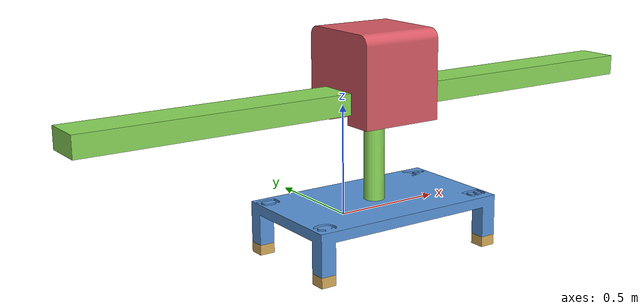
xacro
<?xml version="1.0" ?>
<robot name="loadcell" xmlns:xacro="http://www.ros.org/wiki/xacro">

<xacro:include filename="$(find MYROBOT_description)/urdf/materials.xacro" />
<xacro:include filename="$(find MYROBOT_description)/urdf/loadcell.gazebo" />

<!-- world -->

<!-- base_link -->
<link name="base_link">
  <inertial>
    <origin rpy="0 0 0" xyz="0.2900735515823136 0.16333321000352558 -0.055298402154703157"/>
    <mass value="260.48221372496585"/>
    <inertia ixx="9.159959" ixy="-0.018641" ixz="0.001111" iyy="25.350184" iyz="0.000252" izz="33.839156"/>
  </inertial>
  <visual>
    <origin rpy="0 0 0" xyz="0 0 0"/>
    <geometry>
      <mesh filename="package://MYROBOT_description/meshes/base_link.stl" scale="0.001 0.001 0.001"/>
    </geometry>
    <material name="aluminum_anodized_glossy_blue"/>
  </visual>
  <collision>
    <origin rpy="0 0 0" xyz="0 0 0"/>
    <geometry>
      <mesh filename="package://MYROBOT_description/meshes/base_link.stl" scale="0.001 0.001 0.001"/>
    </geometry>
  </collision>
</link>

<!-- load_1 -->
<link name="load_1">
  <inertial>
    <origin rpy="0 0 0" xyz="-1.499999737545457 0.0031503835829082283 0.08189067165140118"/>
    <mass value="502.7328878159581"/>
    <inertia ixx="16.234296" ixy="-0.0" ixz="0.0" iyy="13.605379" iyz="0.023195" izz="16.035127"/>
  </inertial>
  <visual>
    <origin rpy="0 0 0" xyz="-1.790214 -0.163365 -0.529989"/>
    <geometry>
      <mesh filename="package://MYROBOT_description/meshes/load_1.stl" scale="0.001 0.001 0.001"/>
    </geometry>
    <material name="aluminum_anodized_glossy_blue_1_1"/>
  </visual>
  <collision>
    <origin rpy="0 0 0" xyz="-1.790214 -0.163365 -0.529989"/>
    <geometry>
      <mesh filename="package://MYROBOT_description/meshes/load_1.stl" scale="0.001 0.001 0.001"/>
    </geometry>
  </collision>
</link>

<!-- arm_1 -->
<link name="arm_1">
  <inertial>
    <origin rpy="0 0 0" xyz="2.6245454298745585e-07 1.5287263047114585e-07 0.48470195374074454"/>
    <mass value="498.7441901220148"/>
    <inertia ixx="4.429461" ixy="-0.0" ixz="0.0" iyy="356.109461" iyz="0.0" izz="354.85468"/>
  </inertial>
  <visual>
    <origin rpy="0 0 0" xyz="-0.290214 -0.163365 0.020011"/>
    <geometry>
      <mesh filename="package://MYROBOT_description/meshes/arm_1.stl" scale="0.001 0.001 0.001"/>
    </geometry>
    <material name="aluminum_anodized_glossy_blue_1_1_1"/>
  </visual>
  <collision>
    <origin rpy="0 0 0" xyz="-0.290214 -0.163365 0.020011"/>
    <geometry>
      <mesh filename="package://MYROBOT_description/meshes/arm_1.stl" scale="0.001 0.001 0.001"/>
    </geometry>
  </collision>
</link>

<!-- Load_cell_A_1 -->
<link name="LoadCell_A_1">
  <inertial>
    <origin rpy="0 0 0" xyz="2.6245454298745585e-07 1.5287263033236798e-07 -0.025000319619697398"/>
    <mass value="2.2078124999999997"/>
    <inertia ixx="0.001495" ixy="0.0" ixz="0.0" iyy="0.001495" iyz="0.0" izz="0.00207"/>
  </inertial>
  <visual>
    <origin rpy="0 0 0" xyz="-0.752714 -0.425865 0.220011"/>
    <geometry>
      <mesh filename="package://MYROBOT_description/meshes/LoadCell_A_1.stl" scale="0.001 0.001 0.001"/>
    </geometry>
    <material name="aluminum_anodized_glossy_blue_1"/>
  </visual>
  <collision>
    <origin rpy="0 0 0" xyz="-0.752714 -0.425865 0.220011"/>
    <geometry>
      <mesh filename="package://MYROBOT_description/meshes/LoadCell_A_1.stl" scale="0.001 0.001 0.001"/>
    </geometry>
  </collision>
</link>

<!-- Load_cell_B_1 -->
<link name="LoadCell_B_1">
  <inertial>
    <origin rpy="0 0 0" xyz="2.6245454276541125e-07 1.528726305405348e-07 -0.025000319619697398"/>
    <mass value="2.2078124999999997"/>
    <inertia ixx="0.001495" ixy="0.0" ixz="0.0" iyy="0.001495" iyz="0.0" izz="0.00207"/>
  </inertial>
  <visual>
    <origin rpy="0 0 0" xyz="-0.752714 0.099135 0.220011"/>
    <geometry>
      <mesh filename="package://MYROBOT_description/meshes/LoadCell_B_1.stl" scale="0.001 0.001 0.001"/>
    </geometry>
    <material name="aluminum_anodized_glossy_blue_1"/>
  </visual>
  <collision>
    <origin rpy="0 0 0" xyz="-0.752714 0.099135 0.220011"/>
    <geometry>
      <mesh filename="package://MYROBOT_description/meshes/LoadCell_B_1.stl" scale="0.001 0.001 0.001"/>
    </geometry>
  </collision>
</link>

<!-- Load_cell_C_1 -->
<link name="LoadCell_C_1">
  <inertial>
    <origin rpy="0 0 0" xyz="2.624545432927672e-07 1.5287263047114585e-07 -0.025000319619697398"/>
    <mass value="2.2078124999999997"/>
    <inertia ixx="0.001495" ixy="0.0" ixz="-0.0" iyy="0.001495" iyz="0.0" izz="0.00207"/>
  </inertial>
  <visual>
    <origin rpy="0 0 0" xyz="0.172286 0.099135 0.220011"/>
    <geometry>
      <mesh filename="package://MYROBOT_description/meshes/LoadCell_C_1.stl" scale="0.001 0.001 0.001"/>
    </geometry>
    <material name="aluminum_anodized_glossy_blue_1"/>
  </visual>
  <collision>
    <origin rpy="0 0 0" xyz="0.172286 0.099135 0.220011"/>
    <geometry>
      <mesh filename="package://MYROBOT_description/meshes/LoadCell_C_1.stl" scale="0.001 0.001 0.001"/>
    </geometry>
  </collision>
</link>

<!-- Load_cell_D_1 -->
<link name="LoadCell_D_1">
  <inertial>
    <origin rpy="0 0 0" xyz="2.6245454334827834e-07 1.5287263033236798e-07 -0.025000319619697398"/>
    <mass value="2.2078124999999997"/>
    <inertia ixx="0.001495" ixy="0.0" ixz="-0.0" iyy="0.001495" iyz="0.0" izz="0.00207"/>
  </inertial>
  <visual>
    <origin rpy="0 0 0" xyz="0.172286 -0.425865 0.220011"/>
    <geometry>
      <mesh filename="package://MYROBOT_description/meshes/LoadCell_D_1.stl" scale="0.001 0.001 0.001"/>
    </geometry>
    <material name="aluminum_anodized_glossy_blue_1"/>
  </visual>
  <collision>
    <origin rpy="0 0 0" xyz="0.172286 -0.425865 0.220011"/>
    <geometry>
      <mesh filename="package://MYROBOT_description/meshes/LoadCell_D_1.stl" scale="0.001 0.001 0.001"/>
    </geometry>
  </collision>
</link>

<!-- joint > baselink to world -->

<!-- joint > arm_load_slide -->
<joint name="arm_load_slide" type="prismatic">
  <origin rpy="0 0 0" xyz="1.5 0.0 0.55"/>
  <parent link="arm_1"/>
  <child link="load_1"/>
  <axis xyz="1.0 0.0 -0.0"/>
  <limit effort="100" lower="-1.0" upper="1.0" velocity="100"/>
</joint>

<!-- joint > am_rotate -->
<joint name="am_rotate" type="continuous">
  <origin rpy="0 0 0" xyz="0.290214 0.163365 -0.020011"/>
  <parent link="base_link"/>
  <child link="arm_1"/>
  <axis xyz="0.0 0.0 1.0"/>
</joint>

<!-- joint > base_loadcellA -->

<joint name="base_loadcellA" type="fixed">
  <origin rpy="0 0 0" xyz="0.752714 0.425865 -0.220011"/>
  <parent link="base_link"/>
  <child link="LoadCell_A_1"/>
  <axis xyz="0.0 0.0 0.0"/>
  <limit effort="0" lower="0" upper="0" velocity="0"/>
</joint>

<!-- joint > base_loadcellB -->
<joint name="base_loadcellB" type="fixed">
  <origin rpy="0 0 0" xyz="0.752714 -0.099135 -0.220011"/>
  <parent link="base_link"/>
  <child link="LoadCell_B_1"/>
</joint>

<!-- joint > base_loadcellC -->
<joint name="base_loadcellC" type="fixed">
  <origin rpy="0 0 0" xyz="-0.172286 -0.099135 -0.220011"/>
  <parent link="base_link"/>
  <child link="LoadCell_C_1"/>
</joint>

<!-- joint > base_loadcellD -->
<joint name="base_loadcellD" type="fixed">
  <origin rpy="0 0 0" xyz="-0.172286 0.425865 -0.220011"/>
  <parent link="base_link"/>
  <child link="LoadCell_D_1"/>
</joint>

</robot>

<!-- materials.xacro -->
<robot name="loadcell" xmlns:xacro="http://www.ros.org/wiki/xacro" >

<material name="silver_default">
  <color rgba="0.700 0.700 0.700 1.000"/>
</material>
<material name="aluminum_anodized_glossy_blue_1">
  <color rgba="0.8509803921568627 0.6745098039215687 0.34901960784313724 1.0"/>
</material>
<material name="aluminum_anodized_glossy_blue">
  <color rgba="0.34901960784313724 0.5843137254901961 0.8549019607843137 1.0"/>
</material>
<material name="aluminum_anodized_glossy_blue_1_1_1">
  <color rgba="0.5411764705882353 0.8509803921568627 0.34901960784313724 1.0"/>
</material>
<material name="aluminum_anodized_glossy_blue_1_1">
  <color rgba="0.8509803921568627 0.34901960784313724 0.39215686274509803 1.0"/>
</material>

</robot>

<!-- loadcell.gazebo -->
<robot name="loadcell" xmlns:xacro="http://www.ros.org/wiki/xacro" >

<xacro:property name="arm_color" value="Gazebo/Green" />
<xacro:property name="load_color" value="Gazebo/Red" />
<xacro:property name="base_color" value="Gazebo/Blue" />
<xacro:property name="loadcell_color" value="Gazebo/DarkYellow" />

  <!-- ros_control plugin -->
  <gazebo>
    <plugin name="gazebo_ros_control" filename="libgazebo_ros_control.so">
      <robotNamespace>/loadcell</robotNamespace>
      <robotSimType>gazebo_ros_control/DefaultRobotHWSim</robotSimType>
    </plugin>
  </gazebo>

  <transmission name="tran1">
    <type>transmission_interface/SimpleTransmission</type>
    <joint name="arm_load_slide">
      <hardwareInterface>hardware_interface/EffortJointInterface</hardwareInterface>
    </joint>
    <actuator name="motor1">
      <hardwareInterface>hardware_interface/EffortJointInterface</hardwareInterface>
      <mechanicalReduction>1</mechanicalReduction>
    </actuator>
  </transmission>

  <transmission name="tran2">
    <type>transmission_interface/SimpleTransmission</type>
    <joint name="am_rotate">
      <hardwareInterface>hardware_interface/EffortJointInterface</hardwareInterface>
    </joint>
    <actuator name="motor2">
      <hardwareInterface>hardware_interface/EffortJointInterface</hardwareInterface>
      <mechanicalReduction>1</mechanicalReduction>
    </actuator>
  </transmission>

    <!-- Joint state publisher plugin -->
  <gazebo>
    <plugin name="joint_state_publisher" filename="libgazebo_ros_joint_state_publisher.so">
        <robotNamespace>loadcell</robotNamespace>
        <jointName>arm_load_slide, am_rotate</jointName>
        <updateRate>100</updateRate>
    </plugin>
  </gazebo>

<!--================== contact sensor ==================-->

<!-- FT sensor -->
<!-- Enable the Joint Feedback -->
<gazebo reference="base_loadcellA">
  <provideFeedback>true</provideFeedback>
</gazebo>
<!-- The ft_sensor plugin -->
<gazebo>
  <plugin name="ft_sensor" filename="libgazebo_ros_ft_sensor.so">
  <updateRate>100.0</updateRate>
  <topicName>ft_sensor_topic</topicName>
  <jointName>base_loadcellA</jointName>
  </plugin>
</gazebo>

<gazebo reference="base_link">
  <material>${base_color}</material>
  <mu1>0.2</mu1>
  <mu2>0.2</mu2>
  <selfCollide>true</selfCollide>
  <gravity>true</gravity>
</gazebo>

<gazebo reference="load_1">
  <material>${load_color}</material>
  <mu1>0.2</mu1>
  <mu2>0.2</mu2>
  <selfCollide>true</selfCollide>
</gazebo>

<gazebo reference="arm_1">
  <material>${arm_color}</material>
  <mu1>0.2</mu1>
  <mu2>0.2</mu2>
  <selfCollide>true</selfCollide>
</gazebo>

<gazebo reference="LoadCell_A_1">
  <material>${loadcell_color}</material>
  <mu1>0.2</mu1>
  <mu2>0.2</mu2>
  <selfCollide>true</selfCollide>
</gazebo>

<gazebo reference="LoadCell_B_1">
  <material>${loadcell_color}</material>
  <mu1>0.2</mu1>
  <mu2>0.2</mu2>
  <selfCollide>true</selfCollide>
</gazebo>

<gazebo reference="LoadCell_C_1">
  <material>${loadcell_color}</material>
  <mu1>0.2</mu1>
  <mu2>0.2</mu2>
  <selfCollide>true</selfCollide>
</gazebo>

<gazebo reference="LoadCell_D_1">
  <material>${loadcell_color}</material>
  <mu1>0.2</mu1>
  <mu2>0.2</mu2>
  <selfCollide>true</selfCollide>
</gazebo>

  <!-- ros_control plugin -->

  <!-- Joint state publisher plugin -->

</robot>
